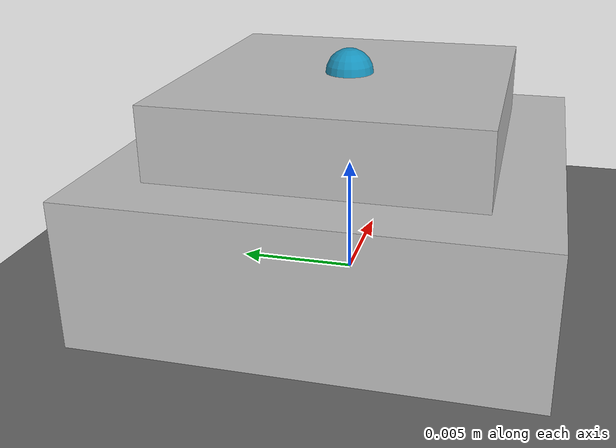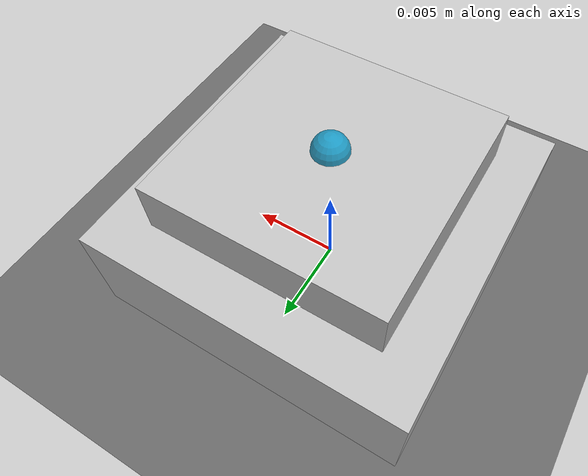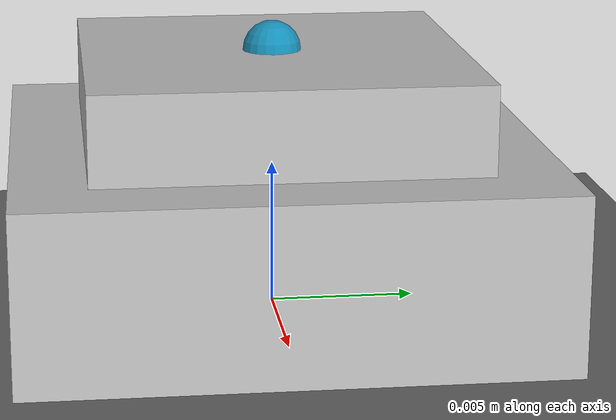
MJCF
<mujoco model="keyboard_keycap_1u">

  <compiler angle="radian" autolimits="true"/>

  <option gravity="0 0 -9.81" timestep="0.002"/>

  <asset>
    <material name="pbt_gray"
              rgba="0.75 0.75 0.75 1"
              specular="0.1"
              shininess="0.2"
              reflectance="0.02"/>
  </asset>

  <worldbody>

    <geom name="ground" type="plane" size="1 1 0.1"
          pos="0 0 0"
          friction="0.8 0.005 0.0001"
          rgba="0.4 0.4 0.4 1"/>

    <body name="keycap_1u" pos="0 0 0">

      <inertial pos="0 0 0.0045"
                mass="0.003"
                diaginertia="8.0e-8 8.0e-8 1.2e-7"/>

      <!-- freejoint added in integration scene -->

      <geom name="keycap_base"
            type="box"
            size="0.009 0.009 0.003"
            pos="0 0 0.003"
            material="pbt_gray"
            density="1300"
            friction="0.6 0.005 0.0001"
            condim="4"
            priority="1"/>

      <geom name="keycap_top"
            type="box"
            size="0.0065 0.0065 0.0015"
            pos="0 0 0.0075"
            material="pbt_gray"
            density="1300"
            friction="0.6 0.005 0.0001"
            condim="4"
            priority="1"/>

      <!-- ══════════════════════════════════════════════════════════════
           REGISTRATION SITES
           ══════════════════════════════════════════════════════════════ -->

      <!-- Bottom face center — stem clip point -->
      <!-- Aligns to switch vacuum_grasp site (stem top) -->
      <site name="stem_clip"
            type="sphere" size="0.001"
            pos="0 0 0"
            rgba="1 0.2 0.2 0.8"/>

      <!-- Top surface center — vacuum grasp point -->
      <site name="vacuum_grasp"
            type="sphere" size="0.001"
            pos="0 0 0.009"
            rgba="0 0.6 0.8 0.8"/>

      <!-- Keycap center reference -->
      <site name="keycap_center"
            type="sphere" size="0.001"
            pos="0 0 0.0045"
            rgba="1 1 0 0.4"/>

    </body>

  </worldbody>

</mujoco>
